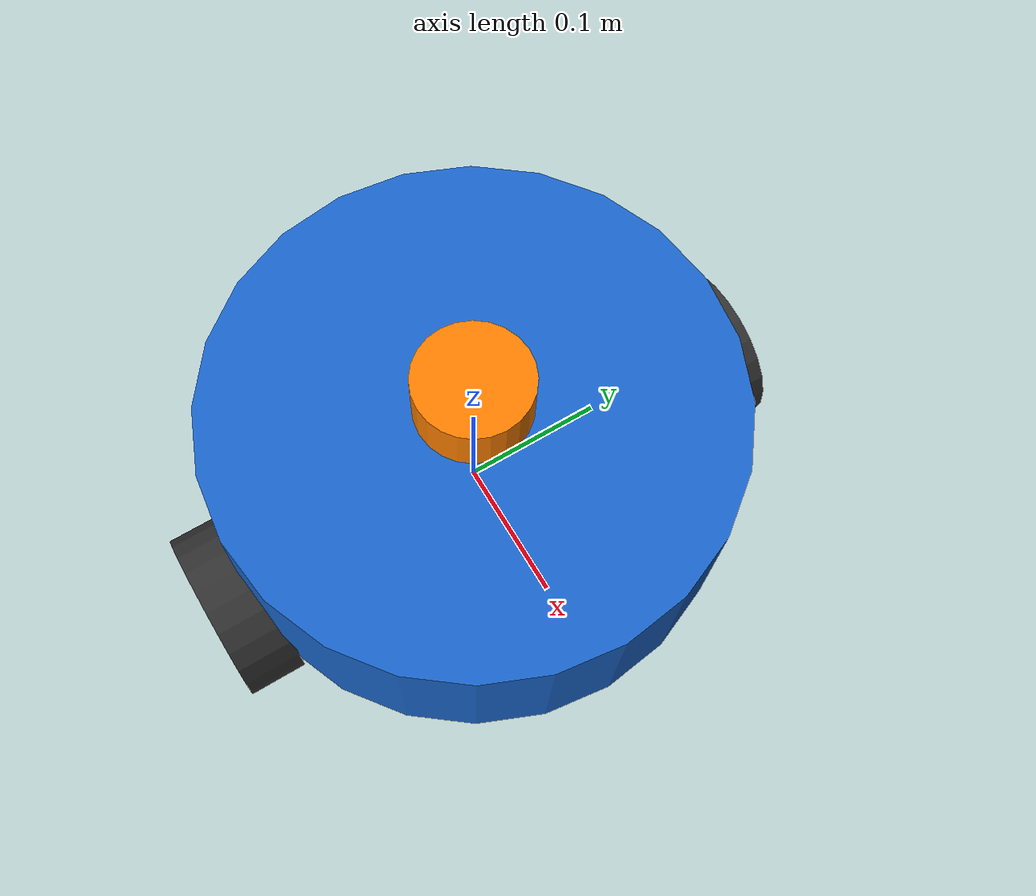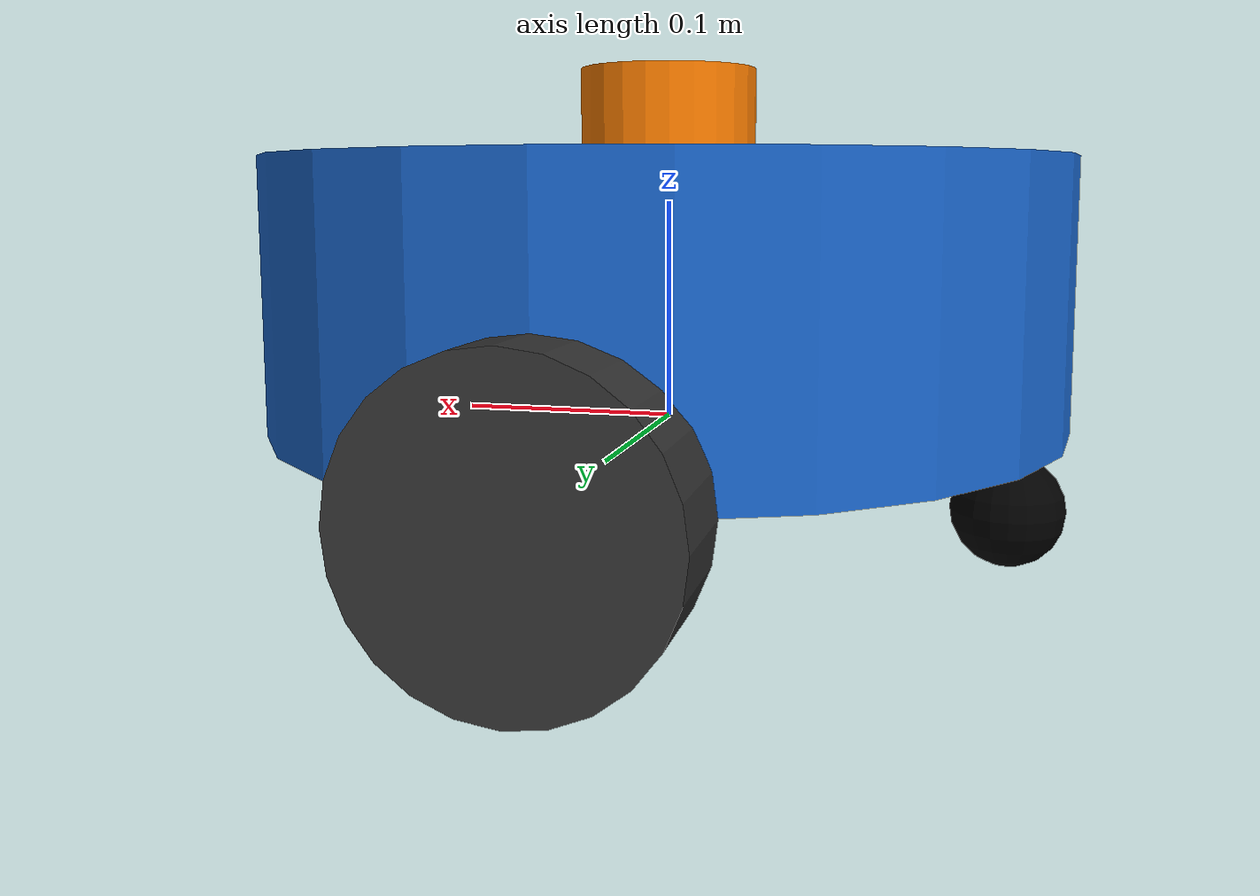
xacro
<?xml version="1.0"?>
<robot name="delivery_bot" xmlns:xacro="http://www.ros.org/wiki/xacro">

  <!-- ═══════════════════════════════════════════════════════════════
       PARAMETERS — change here, updates propagate everywhere
  ═══════════════════════════════════════════════════════════════ -->
  <xacro:property name="base_radius"    value="0.18"/>
  <xacro:property name="base_height"    value="0.12"/>
  <xacro:property name="base_mass"      value="5.0"/>

  <xacro:property name="wheel_radius"   value="0.06"/>
  <xacro:property name="wheel_width"    value="0.04"/>
  <xacro:property name="wheel_mass"     value="0.5"/>
  <xacro:property name="wheel_sep"      value="0.38"/>   <!-- track width -->

  <xacro:property name="caster_radius"  value="0.025"/>
  <xacro:property name="lidar_height"   value="0.11"/>   <!-- above base centre -->

  <!-- Colours -->
  <material name="dark_grey"><color rgba="0.2 0.2 0.2 1.0"/></material>
  <material name="blue_body"><color rgba="0.1 0.4 0.8 1.0"/></material>
  <material name="orange">   <color rgba="1.0 0.5 0.0 1.0"/></material>
  <material name="black">    <color rgba="0.0 0.0 0.0 1.0"/></material>
  <material name="red">      <color rgba="0.8 0.1 0.1 1.0"/></material>

  <!-- ═══════════════════════════════════════════════════════════════
       BASE FOOTPRINT  (virtual link — Nav2 convention)
  ═══════════════════════════════════════════════════════════════ -->
  <link name="base_footprint"/>

  <joint name="base_footprint_joint" type="fixed">
    <parent link="base_footprint"/>
    <child  link="base_link"/>
    <origin xyz="0 0 ${wheel_radius}" rpy="0 0 0"/>
  </joint>

  <!-- ═══════════════════════════════════════════════════════════════
       BASE LINK  (robot chassis)
  ═══════════════════════════════════════════════════════════════ -->
  <link name="base_link">
    <visual>
      <geometry>
        <cylinder radius="${base_radius}" length="${base_height}"/>
      </geometry>
      <material name="blue_body"/>
    </visual>
    <collision>
      <geometry>
        <cylinder radius="${base_radius}" length="${base_height}"/>
      </geometry>
    </collision>
    <inertial>
      <mass value="${base_mass}"/>
      <!-- Solid cylinder: Ixx = Iyy = m(3r²+h²)/12 ; Izz = mr²/2 -->
      <inertia
        ixx="${base_mass*(3*base_radius*base_radius + base_height*base_height)/12.0}"
        iyy="${base_mass*(3*base_radius*base_radius + base_height*base_height)/12.0}"
        izz="${base_mass*base_radius*base_radius/2.0}"
        ixy="0" ixz="0" iyz="0"/>
    </inertial>
  </link>

  <!-- Gazebo colour for base -->
  <gazebo reference="base_link">
    <material>Gazebo/Blue</material>
  </gazebo>

  <!-- ═══════════════════════════════════════════════════════════════
       WHEEL MACRO  — instantiated for left and right
  ═══════════════════════════════════════════════════════════════ -->
  <xacro:macro name="wheel" params="side y_reflect">
    <link name="${side}_wheel">
      <visual>
        <origin rpy="${pi/2} 0 0" xyz="0 0 0"/>
        <geometry>
          <cylinder radius="${wheel_radius}" length="${wheel_width}"/>
        </geometry>
        <material name="dark_grey"/>
      </visual>
      <collision>
        <origin rpy="${pi/2} 0 0" xyz="0 0 0"/>
        <geometry>
          <cylinder radius="${wheel_radius}" length="${wheel_width}"/>
        </geometry>
      </collision>
      <inertial>
        <mass value="${wheel_mass}"/>
        <!-- Thin solid cylinder (wheel axis = Y): Ixx=Izz=m(3r²+h²)/12 ; Iyy=mr²/2 -->
        <inertia
          ixx="${wheel_mass*(3*wheel_radius*wheel_radius + wheel_width*wheel_width)/12.0}"
          iyy="${wheel_mass*wheel_radius*wheel_radius/2.0}"
          izz="${wheel_mass*(3*wheel_radius*wheel_radius + wheel_width*wheel_width)/12.0}"
          ixy="0" ixz="0" iyz="0"/>
      </inertial>
    </link>

    <joint name="${side}_wheel_joint" type="continuous">
      <parent link="base_link"/>
      <child  link="${side}_wheel"/>
      <origin xyz="0 ${y_reflect * wheel_sep/2.0} ${-base_height/2.0 + wheel_radius - wheel_radius}"
              rpy="0 0 0"/>
      <axis xyz="0 1 0"/>
      <dynamics damping="0.1" friction="0.05"/>
    </joint>

    <gazebo reference="${side}_wheel">
      <material>Gazebo/DarkGrey</material>
      <mu1>1.0</mu1>
      <mu2>1.0</mu2>
      <kp>500000.0</kp>
      <kd>10.0</kd>
    </gazebo>
  </xacro:macro>

  <xacro:wheel side="left"  y_reflect=" 1"/>
  <xacro:wheel side="right" y_reflect="-1"/>

  <!-- ═══════════════════════════════════════════════════════════════
       CASTER WHEEL  (passive ball at rear)
  ═══════════════════════════════════════════════════════════════ -->
  <link name="caster_link">
    <visual>
      <geometry><sphere radius="${caster_radius}"/></geometry>
      <material name="black"/>
    </visual>
    <collision>
      <geometry><sphere radius="${caster_radius}"/></geometry>
    </collision>
    <inertial>
      <mass value="0.1"/>
      <inertia ixx="1e-5" iyy="1e-5" izz="1e-5" ixy="0" ixz="0" iyz="0"/>
    </inertial>
  </link>

  <joint name="caster_joint" type="fixed">
    <parent link="base_link"/>
    <child  link="caster_link"/>
    <origin xyz="${-base_radius + caster_radius} 0 ${-base_height/2.0 - wheel_radius + caster_radius}"
            rpy="0 0 0"/>
  </joint>

  <gazebo reference="caster_link">
    <material>Gazebo/Black</material>
    <mu1>0.0</mu1>
    <mu2>0.0</mu2>
  </gazebo>

  <!-- ═══════════════════════════════════════════════════════════════
       LIDAR LINK
  ═══════════════════════════════════════════════════════════════ -->
  <link name="laser_link">
    <visual>
      <geometry>
        <cylinder radius="0.04" length="0.04"/>
      </geometry>
      <material name="orange"/>
    </visual>
    <collision>
      <geometry>
        <cylinder radius="0.04" length="0.04"/>
      </geometry>
    </collision>
    <inertial>
      <mass value="0.1"/>
      <inertia ixx="1e-5" iyy="1e-5" izz="1e-5" ixy="0" ixz="0" iyz="0"/>
    </inertial>
  </link>

  <joint name="laser_joint" type="fixed">
    <parent link="base_link"/>
    <child  link="laser_link"/>
    <origin xyz="0 0 ${base_height/2.0 + 0.02}" rpy="0 0 0"/>
  </joint>

  <gazebo reference="laser_link">
    <material>Gazebo/Orange</material>
    <!-- ── 360° LIDAR sensor plugin ── -->
    <sensor type="ray" name="lidar_sensor">
      <pose>0 0 0 0 0 0</pose>
      <always_on>true</always_on>
      <visualize>false</visualize>
      <update_rate>10</update_rate>
      <ray>
        <scan>
          <horizontal>
            <samples>360</samples>
            <resolution>1</resolution>
            <min_angle>-3.14159265</min_angle>
            <max_angle> 3.14159265</max_angle>
          </horizontal>
        </scan>
        <range>
          <min>0.12</min>
          <max>10.0</max>
          <resolution>0.01</resolution>
        </range>
        <noise>
          <type>gaussian</type>
          <mean>0.0</mean>
          <stddev>0.01</stddev>
        </noise>
      </ray>
      <plugin name="gazebo_ros_lidar" filename="libgazebo_ros_ray_sensor.so">
        <ros>
          <remapping>~/out:=/scan</remapping>
        </ros>
        <output_type>sensor_msgs/LaserScan</output_type>
        <frame_name>laser_link</frame_name>
      </plugin>
    </sensor>
  </gazebo>

  <!-- ═══════════════════════════════════════════════════════════════
       IMU LINK  (used by robot_localization EKF — optional)
  ═══════════════════════════════════════════════════════════════ -->
  <link name="imu_link">
    <visual>
      <geometry><box size="0.02 0.02 0.02"/></geometry>
      <material name="red"/>
    </visual>
    <inertial>
      <mass value="0.01"/>
      <inertia ixx="1e-7" iyy="1e-7" izz="1e-7" ixy="0" ixz="0" iyz="0"/>
    </inertial>
  </link>

  <joint name="imu_joint" type="fixed">
    <parent link="base_link"/>
    <child  link="imu_link"/>
    <origin xyz="0 0 0" rpy="0 0 0"/>
  </joint>

  <gazebo reference="imu_link">
    <sensor name="imu_sensor" type="imu">
      <always_on>true</always_on>
      <update_rate>100</update_rate>
      <plugin name="gazebo_ros_imu" filename="libgazebo_ros_imu_sensor.so">
        <ros>
          <remapping>~/out:=/imu</remapping>
        </ros>
        <frame_name>imu_link</frame_name>
      </plugin>
    </sensor>
  </gazebo>

  <gazebo>
    <plugin name="differential_drive_controller"
            filename="libgazebo_ros_diff_drive.so">
      <!-- Joints -->
      <left_joint>left_wheel_joint</left_joint>
      <right_joint>right_wheel_joint</right_joint>

      <!-- Geometry -->
      <wheel_separation>${wheel_sep}</wheel_separation>
      <wheel_diameter>${2 * wheel_radius}</wheel_diameter>

      <!-- Limits -->
      <max_wheel_torque>50</max_wheel_torque>
      <max_wheel_acceleration>3.5</max_wheel_acceleration>

      <!-- Odometry -->
      <publish_odom>true</publish_odom>
      <publish_odom_tf>true</publish_odom_tf>
      <publish_wheel_tf>false</publish_wheel_tf>

      <!-- Frames -->
      <odometry_frame>odom</odometry_frame>
      <robot_base_frame>base_footprint</robot_base_frame>

      <!-- Topics -->
      <ros>
        <remapping>cmd_vel:=/cmd_vel</remapping>
        <remapping>odom:=/odom</remapping>
      </ros>
    </plugin>

    <!-- Joint state publisher — required for robot_state_publisher -->
    <plugin name="gazebo_ros_joint_state_publisher"
            filename="libgazebo_ros_joint_state_publisher.so">
      <update_rate>30</update_rate>
      <joint_name>left_wheel_joint</joint_name>
      <joint_name>right_wheel_joint</joint_name>
    </plugin>
  </gazebo>

</robot>
